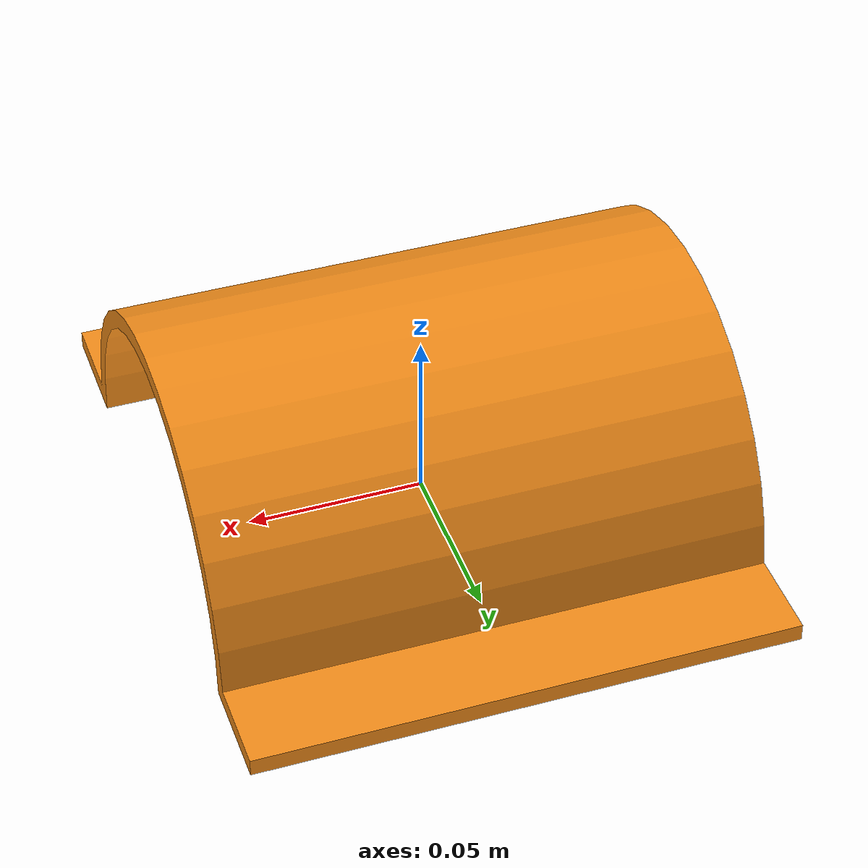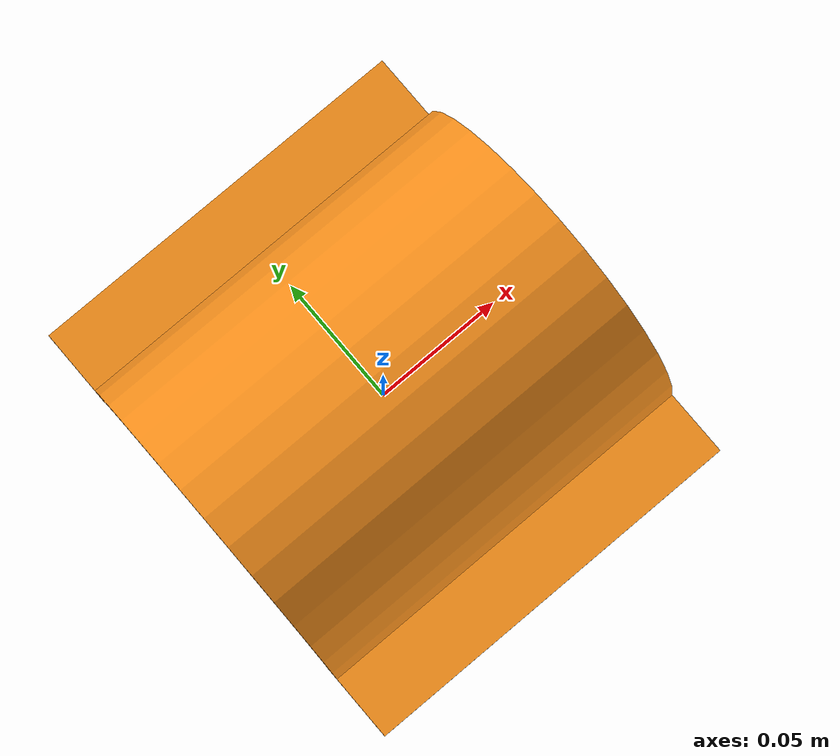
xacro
<?xml version="1.0" ?>
<robot name="cfrp_gazebo" xmlns:xacro="http://wiki.ros.org/xacro">
  <!-- TX90 -->
  <xacro:include filename="$(find staubli_tx90_gazebo)/urdf/cfrp_macro.xacro"/>

  <xacro:cfrp prefix=""/>

  <!-- Fix robot to Gazebo world -->
  <link name="world"/>
  <joint name="world-cfrp_base-fixed" type="fixed">
    <parent link="world"/>
    <child link="cfrp_base"/>
    <origin xyz="0.0 0.0 0.0" rpy="0.0 0.0 0.0" />
  </joint>
</robot>

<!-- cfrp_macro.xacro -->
<robot xmlns:xacro="http://wiki.ros.org/xacro">
<xacro:include filename="$(find staubli_tx90_support)/urdf/cfrp_macro.xacro"/>
<xacro:macro name="cfrp_plat" params="prefix">

  <xacro:cfrp prefix="${prefix}" />

  <gazebo reference="${prefix}cfrp_base">
    <material>Gazebo/Orange</material>
  </gazebo>
</xacro:macro>
</robot>

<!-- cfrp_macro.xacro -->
<robot xmlns:xacro="http://wiki.ros.org/xacro">

  <xacro:macro name="cfrp" params="prefix">
    <!-- links: main serial chain -->
    <link name="${prefix}cfrp_base">
      <visual>
        <origin xyz="0 0 0" rpy="0 0 0"/>
        <material name="orange"/>
        <geometry>
          <mesh
            filename="package://test_bed/meshes/surface_cfrp.STL" />
        </geometry>
      </visual>

      <collision>
          <geometry>
            <mesh
              filename="package://test_bed/meshes/surface_cfrp.STL" />
          </geometry>
          <origin xyz="0 0 0" rpy="0 0 0"/>
      </collision>

      <inertial>
          <mass value="0.18618"/>
          <inertia ixx="0.00061682" ixy="0.0" ixz="0.0" iyy="0.00045111" iyz="0.0" izz="0.00087324"/>
      </inertial>
    </link>

    <gazebo reference="${prefix}cfrp_base">
      <material>Gazebo/Orange</material>
    </gazebo>
  </xacro:macro>
</robot>
